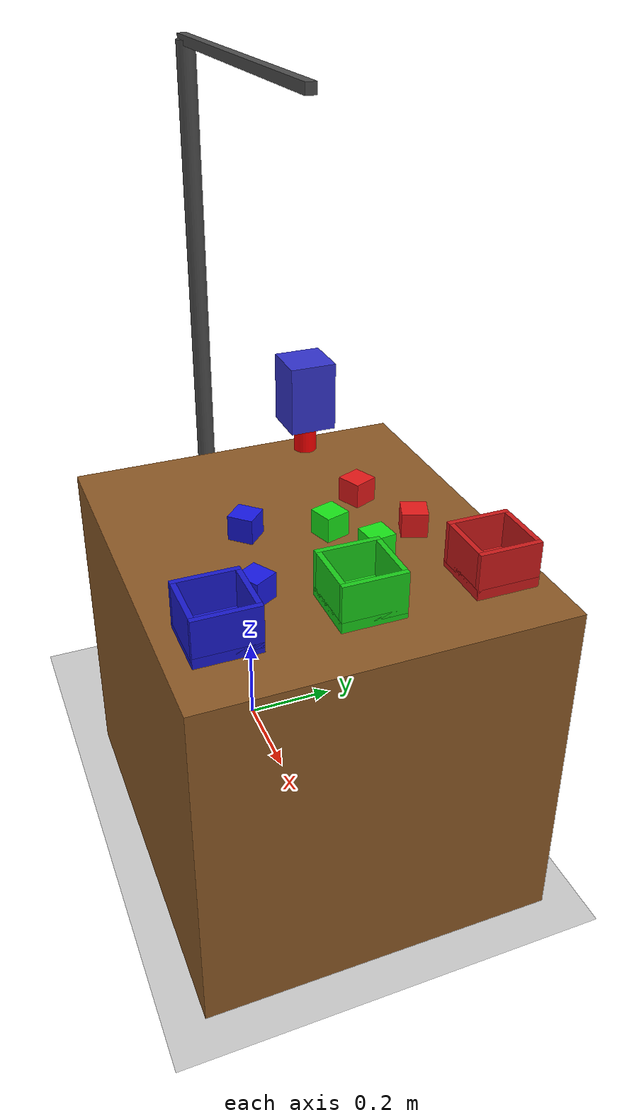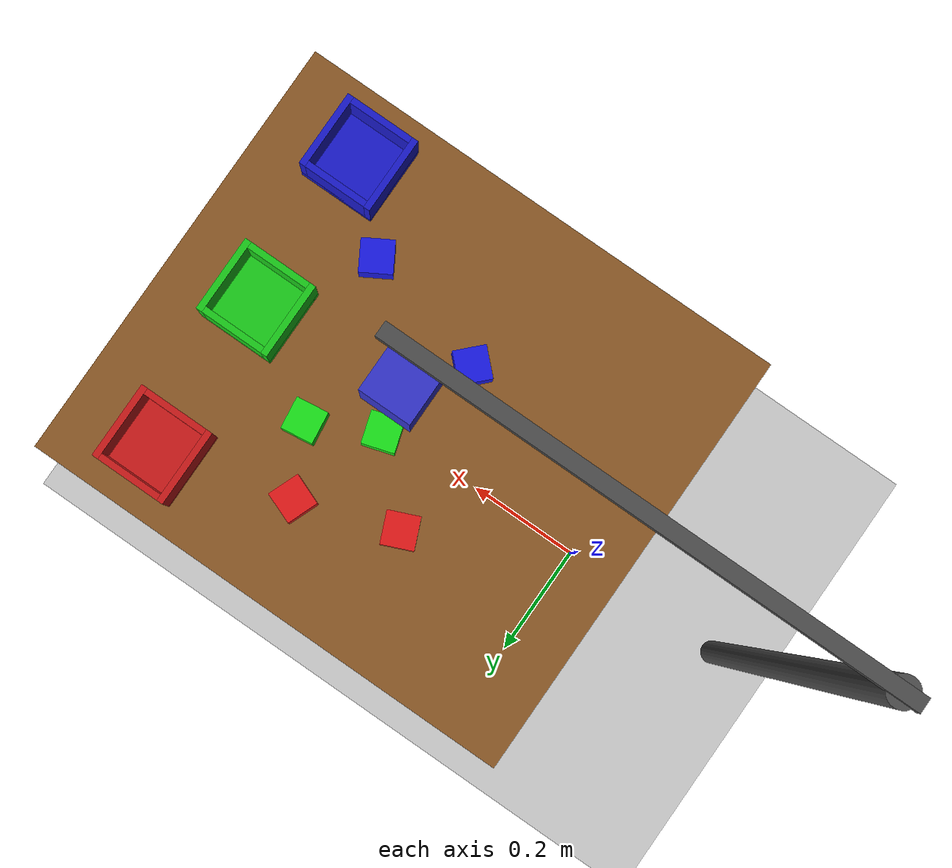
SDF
<?xml version="1.0"?>
<sdf version="1.6">
  <world name="sorting_world">

    <!-- Physics settings -->
    <physics type="ode">
      <max_step_size>0.001</max_step_size>
      <real_time_factor>1</real_time_factor>
      <real_time_update_rate>1000</real_time_update_rate>
      <gravity>0 0 -9.8</gravity>
    </physics>

    <!-- Lighting -->
    <include>
      <uri>model://sun</uri>
    </include>

    <!-- Ground plane -->
    <include>
      <uri>model://ground_plane</uri>
    </include>

    <!-- =========================== TABLE =========================== -->
    <!-- Table: 80cm x 60cm, height 70cm, robot sits on edge -->
    <model name="table">
      <static>true</static>
      <link name="table_link">
        <pose>0.35 0 0.35 0 0 0</pose>
        <collision name="collision">
          <geometry>
            <box>
              <size>0.8 0.7 0.7</size>
            </box>
          </geometry>
        </collision>
        <visual name="visual">
          <geometry>
            <box>
              <size>0.8 0.7 0.7</size>
            </box>
          </geometry>
          <material>
            <ambient>0.55 0.35 0.15 1</ambient>
            <diffuse>0.55 0.35 0.15 1</diffuse>
          </material>
        </visual>
      </link>
    </model>

    <!-- =========================== OVERHEAD CAMERA =========================== -->
    <!-- Camera with blue body and red lens, mounted on pole -->
    <model name="overhead_camera">
      <static>true</static>
      <!-- LOWERED to z=1.0m (closer to table at 0.7m) for better view -->
      <pose>0.35 0 1.0 0 0 0</pose>
      <link name="camera_link">
        <inertial>
          <mass>0.5</mass>
        </inertial>

        <!-- Camera Body (blue box) -->
        <visual name="body_visual">
          <geometry>
            <box>
              <size>0.08 0.08 0.12</size>
            </box>
          </geometry>
          <material>
            <ambient>0.2 0.2 0.8 1</ambient>
            <diffuse>0.2 0.2 0.8 1</diffuse>
          </material>
        </visual>

        <!-- Camera Lens (red cylinder) pointing DOWN -->
        <visual name="lens_visual">
          <pose>0 0 -0.08 0 0 0</pose>
          <geometry>
            <cylinder>
              <radius>0.02</radius>
              <length>0.06</length>
            </cylinder>
          </geometry>
          <material>
            <ambient>1.0 0.0 0.0 1</ambient>
            <diffuse>1.0 0.0 0.0 1</diffuse>
          </material>
        </visual>

        <sensor type="camera" name="camera">
          <!-- Camera looking DOWN: pitch=1.5708 (90 degrees) points camera downward -->
          <pose>0 0 -0.08 0 1.5708 0</pose>
          <always_on>1</always_on>
          <visualize>true</visualize>
          <update_rate>30.0</update_rate>
          <camera>
            <horizontal_fov>1.2</horizontal_fov>
            <image>
              <width>640</width>
              <height>480</height>
              <format>R8G8B8</format>
            </image>
            <clip>
              <near>0.1</near>
              <far>5.0</far>
            </clip>
          </camera>
          <plugin name="camera_controller" filename="libgazebo_ros_camera.so">
            <alwaysOn>true</alwaysOn>
            <updateRate>30.0</updateRate>
            <cameraName>camera</cameraName>
            <imageTopicName>image_raw</imageTopicName>
            <cameraInfoTopicName>camera_info</cameraInfoTopicName>
            <frameName>camera_link</frameName>
          </plugin>
        </sensor>
      </link>
    </model>

    <!-- Camera Stand (visual only) -->
    <model name="camera_stand">
      <static>true</static>
      <link name="pole">
        <pose>-0.3 0 0.75 0 0 0</pose>
        <visual name="visual">
          <geometry>
            <cylinder>
              <radius>0.02</radius>
              <length>1.5</length>
            </cylinder>
          </geometry>
          <material>
            <ambient>0.3 0.3 0.3 1</ambient>
            <diffuse>0.3 0.3 0.3 1</diffuse>
          </material>
        </visual>
      </link>
      <link name="arm">
        <pose>0.025 0 1.5 0 0 0</pose>
        <visual name="visual">
          <geometry>
            <box>
              <size>0.7 0.02 0.02</size>
            </box>
          </geometry>
          <material>
            <ambient>0.3 0.3 0.3 1</ambient>
            <diffuse>0.3 0.3 0.3 1</diffuse>
          </material>
        </visual>
      </link>
    </model>

    <!-- =========================== COLORED CUBES =========================== -->
    <!-- Table top is at z=0.7, cube half-height is 0.025, so cube base at z=0.725 -->
    <!-- Cubes placed within arm reach (0.2m to 0.5m from robot) -->

    <!-- RED CUBE 1 -->
    <model name="red_cube_1">
      <pose>0.25 0.15 0.725 0 0 0.4</pose>
      <link name="link">
        <inertial>
          <mass>0.08</mass>
          <inertia>
            <ixx>0.000021</ixx>
            <iyy>0.000021</iyy>
            <izz>0.000021</izz>
          </inertia>
        </inertial>
        <collision name="collision">
          <geometry>
            <box><size>0.05 0.05 0.05</size></box>
          </geometry>
          <surface>
            <friction><ode><mu>1.0</mu><mu2>1.0</mu2></ode></friction>
          </surface>
        </collision>
        <visual name="visual">
          <geometry>
            <box><size>0.05 0.05 0.05</size></box>
          </geometry>
          <material>
            <ambient>0.9 0.1 0.1 1</ambient>
            <diffuse>0.9 0.1 0.1 1</diffuse>
            <specular>0.5 0.5 0.5 1</specular>
          </material>
        </visual>
      </link>
    </model>

    <!-- RED CUBE 2 -->
    <model name="red_cube_2">
      <pose>0.4 0.2 0.725 0 0 1.2</pose>
      <link name="link">
        <inertial>
          <mass>0.08</mass>
          <inertia>
            <ixx>0.000021</ixx>
            <iyy>0.000021</iyy>
            <izz>0.000021</izz>
          </inertia>
        </inertial>
        <collision name="collision">
          <geometry>
            <box><size>0.05 0.05 0.05</size></box>
          </geometry>
          <surface>
            <friction><ode><mu>1.0</mu><mu2>1.0</mu2></ode></friction>
          </surface>
        </collision>
        <visual name="visual">
          <geometry>
            <box><size>0.05 0.05 0.05</size></box>
          </geometry>
          <material>
            <ambient>0.9 0.1 0.1 1</ambient>
            <diffuse>0.9 0.1 0.1 1</diffuse>
            <specular>0.5 0.5 0.5 1</specular>
          </material>
        </visual>
      </link>
    </model>

    <!-- BLUE CUBE 1 -->
    <model name="blue_cube_1">
      <pose>0.3 -0.1 0.725 0 0 0.8</pose>
      <link name="link">
        <inertial>
          <mass>0.08</mass>
          <inertia>
            <ixx>0.000021</ixx>
            <iyy>0.000021</iyy>
            <izz>0.000021</izz>
          </inertia>
        </inertial>
        <collision name="collision">
          <geometry>
            <box><size>0.05 0.05 0.05</size></box>
          </geometry>
          <surface>
            <friction><ode><mu>1.0</mu><mu2>1.0</mu2></ode></friction>
          </surface>
        </collision>
        <visual name="visual">
          <geometry>
            <box><size>0.05 0.05 0.05</size></box>
          </geometry>
          <material>
            <ambient>0.1 0.1 0.9 1</ambient>
            <diffuse>0.1 0.1 0.9 1</diffuse>
            <specular>0.5 0.5 0.5 1</specular>
          </material>
        </visual>
      </link>
    </model>

    <!-- BLUE CUBE 2 -->
    <model name="blue_cube_2">
      <pose>0.5 -0.15 0.725 0 0 2.1</pose>
      <link name="link">
        <inertial>
          <mass>0.08</mass>
          <inertia>
            <ixx>0.000021</ixx>
            <iyy>0.000021</iyy>
            <izz>0.000021</izz>
          </inertia>
        </inertial>
        <collision name="collision">
          <geometry>
            <box><size>0.05 0.05 0.05</size></box>
          </geometry>
          <surface>
            <friction><ode><mu>1.0</mu><mu2>1.0</mu2></ode></friction>
          </surface>
        </collision>
        <visual name="visual">
          <geometry>
            <box><size>0.05 0.05 0.05</size></box>
          </geometry>
          <material>
            <ambient>0.1 0.1 0.9 1</ambient>
            <diffuse>0.1 0.1 0.9 1</diffuse>
            <specular>0.5 0.5 0.5 1</specular>
          </material>
        </visual>
      </link>
    </model>

    <!-- GREEN CUBE 1 -->
    <model name="green_cube_1">
      <pose>0.35 0.05 0.725 0 0 0.3</pose>
      <link name="link">
        <inertial>
          <mass>0.08</mass>
          <inertia>
            <ixx>0.000021</ixx>
            <iyy>0.000021</iyy>
            <izz>0.000021</izz>
          </inertia>
        </inertial>
        <collision name="collision">
          <geometry>
            <box><size>0.05 0.05 0.05</size></box>
          </geometry>
          <surface>
            <friction><ode><mu>1.0</mu><mu2>1.0</mu2></ode></friction>
          </surface>
        </collision>
        <visual name="visual">
          <geometry>
            <box><size>0.05 0.05 0.05</size></box>
          </geometry>
          <material>
            <ambient>0.1 0.9 0.1 1</ambient>
            <diffuse>0.1 0.9 0.1 1</diffuse>
            <specular>0.5 0.5 0.5 1</specular>
          </material>
        </visual>
      </link>
    </model>

    <!-- GREEN CUBE 2 -->
    <model name="green_cube_2">
      <pose>0.45 0.1 0.725 0 0 1.7</pose>
      <link name="link">
        <inertial>
          <mass>0.08</mass>
          <inertia>
            <ixx>0.000021</ixx>
            <iyy>0.000021</iyy>
            <izz>0.000021</izz>
          </inertia>
        </inertial>
        <collision name="collision">
          <geometry>
            <box><size>0.05 0.05 0.05</size></box>
          </geometry>
          <surface>
            <friction><ode><mu>1.0</mu><mu2>1.0</mu2></ode></friction>
          </surface>
        </collision>
        <visual name="visual">
          <geometry>
            <box><size>0.05 0.05 0.05</size></box>
          </geometry>
          <material>
            <ambient>0.1 0.9 0.1 1</ambient>
            <diffuse>0.1 0.9 0.1 1</diffuse>
            <specular>0.5 0.5 0.5 1</specular>
          </material>
        </visual>
      </link>
    </model>

    <!-- =========================== SORTING BINS =========================== -->
    <!-- Bins on far side of table, within arm reach -->

    <!-- RED BIN -->
    <model name="red_bin">
      <static>true</static>
      <pose>0.6 0.25 0.72 0 0 0</pose>
      <link name="link">
        <visual name="bottom">
          <pose>0 0 0 0 0 0</pose>
          <geometry><box><size>0.12 0.12 0.02</size></box></geometry>
          <material><ambient>0.8 0.1 0.1 1</ambient><diffuse>0.8 0.1 0.1 1</diffuse></material>
        </visual>
        <collision name="bottom_col">
          <pose>0 0 0 0 0 0</pose>
          <geometry><box><size>0.12 0.12 0.02</size></box></geometry>
        </collision>
        <visual name="wall1">
          <pose>0.055 0 0.04 0 0 0</pose>
          <geometry><box><size>0.01 0.12 0.08</size></box></geometry>
          <material><ambient>0.8 0.1 0.1 1</ambient><diffuse>0.8 0.1 0.1 1</diffuse></material>
        </visual>
        <collision name="wall1_col">
          <pose>0.055 0 0.04 0 0 0</pose>
          <geometry><box><size>0.01 0.12 0.08</size></box></geometry>
        </collision>
        <visual name="wall2">
          <pose>-0.055 0 0.04 0 0 0</pose>
          <geometry><box><size>0.01 0.12 0.08</size></box></geometry>
          <material><ambient>0.8 0.1 0.1 1</ambient><diffuse>0.8 0.1 0.1 1</diffuse></material>
        </visual>
        <collision name="wall2_col">
          <pose>-0.055 0 0.04 0 0 0</pose>
          <geometry><box><size>0.01 0.12 0.08</size></box></geometry>
        </collision>
        <visual name="wall3">
          <pose>0 0.055 0.04 0 0 0</pose>
          <geometry><box><size>0.1 0.01 0.08</size></box></geometry>
          <material><ambient>0.8 0.1 0.1 1</ambient><diffuse>0.8 0.1 0.1 1</diffuse></material>
        </visual>
        <collision name="wall3_col">
          <pose>0 0.055 0.04 0 0 0</pose>
          <geometry><box><size>0.1 0.01 0.08</size></box></geometry>
        </collision>
        <visual name="wall4">
          <pose>0 -0.055 0.04 0 0 0</pose>
          <geometry><box><size>0.1 0.01 0.08</size></box></geometry>
          <material><ambient>0.8 0.1 0.1 1</ambient><diffuse>0.8 0.1 0.1 1</diffuse></material>
        </visual>
        <collision name="wall4_col">
          <pose>0 -0.055 0.04 0 0 0</pose>
          <geometry><box><size>0.1 0.01 0.08</size></box></geometry>
        </collision>
      </link>
    </model>

    <!-- BLUE BIN -->
    <model name="blue_bin">
      <static>true</static>
      <pose>0.6 -0.25 0.72 0 0 0</pose>
      <link name="link">
        <visual name="bottom">
          <pose>0 0 0 0 0 0</pose>
          <geometry><box><size>0.12 0.12 0.02</size></box></geometry>
          <material><ambient>0.1 0.1 0.8 1</ambient><diffuse>0.1 0.1 0.8 1</diffuse></material>
        </visual>
        <collision name="bottom_col">
          <pose>0 0 0 0 0 0</pose>
          <geometry><box><size>0.12 0.12 0.02</size></box></geometry>
        </collision>
        <visual name="wall1">
          <pose>0.055 0 0.04 0 0 0</pose>
          <geometry><box><size>0.01 0.12 0.08</size></box></geometry>
          <material><ambient>0.1 0.1 0.8 1</ambient><diffuse>0.1 0.1 0.8 1</diffuse></material>
        </visual>
        <collision name="wall1_col">
          <pose>0.055 0 0.04 0 0 0</pose>
          <geometry><box><size>0.01 0.12 0.08</size></box></geometry>
        </collision>
        <visual name="wall2">
          <pose>-0.055 0 0.04 0 0 0</pose>
          <geometry><box><size>0.01 0.12 0.08</size></box></geometry>
          <material><ambient>0.1 0.1 0.8 1</ambient><diffuse>0.1 0.1 0.8 1</diffuse></material>
        </visual>
        <collision name="wall2_col">
          <pose>-0.055 0 0.04 0 0 0</pose>
          <geometry><box><size>0.01 0.12 0.08</size></box></geometry>
        </collision>
        <visual name="wall3">
          <pose>0 0.055 0.04 0 0 0</pose>
          <geometry><box><size>0.1 0.01 0.08</size></box></geometry>
          <material><ambient>0.1 0.1 0.8 1</ambient><diffuse>0.1 0.1 0.8 1</diffuse></material>
        </visual>
        <collision name="wall3_col">
          <pose>0 0.055 0.04 0 0 0</pose>
          <geometry><box><size>0.1 0.01 0.08</size></box></geometry>
        </collision>
        <visual name="wall4">
          <pose>0 -0.055 0.04 0 0 0</pose>
          <geometry><box><size>0.1 0.01 0.08</size></box></geometry>
          <material><ambient>0.1 0.1 0.8 1</ambient><diffuse>0.1 0.1 0.8 1</diffuse></material>
        </visual>
        <collision name="wall4_col">
          <pose>0 -0.055 0.04 0 0 0</pose>
          <geometry><box><size>0.1 0.01 0.08</size></box></geometry>
        </collision>
      </link>
    </model>

    <!-- GREEN BIN -->
    <model name="green_bin">
      <static>true</static>
      <pose>0.6 0 0.72 0 0 0</pose>
      <link name="link">
        <visual name="bottom">
          <pose>0 0 0 0 0 0</pose>
          <geometry><box><size>0.12 0.12 0.02</size></box></geometry>
          <material><ambient>0.1 0.8 0.1 1</ambient><diffuse>0.1 0.8 0.1 1</diffuse></material>
        </visual>
        <collision name="bottom_col">
          <pose>0 0 0 0 0 0</pose>
          <geometry><box><size>0.12 0.12 0.02</size></box></geometry>
        </collision>
        <visual name="wall1">
          <pose>0.055 0 0.04 0 0 0</pose>
          <geometry><box><size>0.01 0.12 0.08</size></box></geometry>
          <material><ambient>0.1 0.8 0.1 1</ambient><diffuse>0.1 0.8 0.1 1</diffuse></material>
        </visual>
        <collision name="wall1_col">
          <pose>0.055 0 0.04 0 0 0</pose>
          <geometry><box><size>0.01 0.12 0.08</size></box></geometry>
        </collision>
        <visual name="wall2">
          <pose>-0.055 0 0.04 0 0 0</pose>
          <geometry><box><size>0.01 0.12 0.08</size></box></geometry>
          <material><ambient>0.1 0.8 0.1 1</ambient><diffuse>0.1 0.8 0.1 1</diffuse></material>
        </visual>
        <collision name="wall2_col">
          <pose>-0.055 0 0.04 0 0 0</pose>
          <geometry><box><size>0.01 0.12 0.08</size></box></geometry>
        </collision>
        <visual name="wall3">
          <pose>0 0.055 0.04 0 0 0</pose>
          <geometry><box><size>0.1 0.01 0.08</size></box></geometry>
          <material><ambient>0.1 0.8 0.1 1</ambient><diffuse>0.1 0.8 0.1 1</diffuse></material>
        </visual>
        <collision name="wall3_col">
          <pose>0 0.055 0.04 0 0 0</pose>
          <geometry><box><size>0.1 0.01 0.08</size></box></geometry>
        </collision>
        <visual name="wall4">
          <pose>0 -0.055 0.04 0 0 0</pose>
          <geometry><box><size>0.1 0.01 0.08</size></box></geometry>
          <material><ambient>0.1 0.8 0.1 1</ambient><diffuse>0.1 0.8 0.1 1</diffuse></material>
        </visual>
        <collision name="wall4_col">
          <pose>0 -0.055 0.04 0 0 0</pose>
          <geometry><box><size>0.1 0.01 0.08</size></box></geometry>
        </collision>
      </link>
    </model>

  </world>
</sdf>
